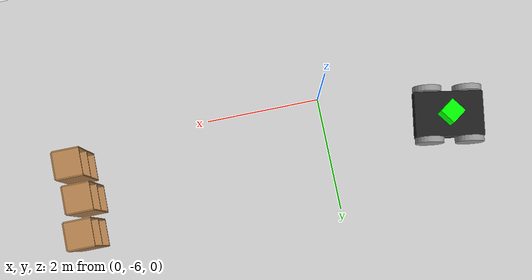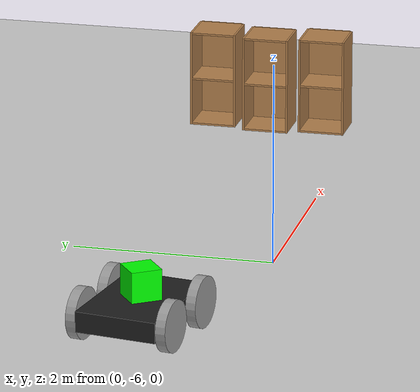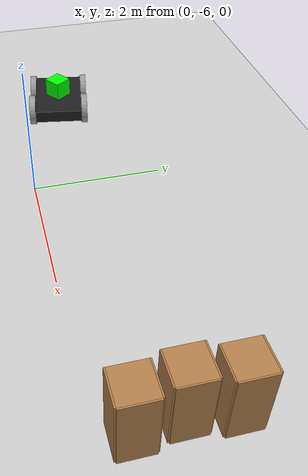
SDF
<sdf version="1.6">
 <world name="default">
  <model name="ground_plane">
   <static>1</static>
   <link name="link">
    <collision name="collision">
     <geometry><plane><normal>0 0 1</normal><size>100 100</size></plane></geometry>
     <surface>
      <contact><collide_bitmask>65535</collide_bitmask></contact>
      <friction><ode><mu>100</mu><mu2>50</mu2></ode></friction>
     </surface>
    </collision>
    <visual name="visual">
     <cast_shadows>0</cast_shadows>
     <geometry><plane><normal>0 0 1</normal><size>100 100</size></plane></geometry>
     <material>
      <script><uri>file://media/materials/scripts/gazebo.material</uri><name>Gazebo/Grey</name></script>
     </material>
    </visual>
   </link>
  </model>
  <model name="4WheeledRobot">
   <link name="link_0">
    <pose>-0 -0 -0.041667 0 -0 0</pose>
    <inertial>
     <mass>1</mass>
     <inertia>
      <ixx>0.166667</ixx>
      <ixy>0</ixy>
      <ixz>0</ixz>
      <iyy>0.166667</iyy>
      <iyz>0</iyz>
      <izz>0.166667</izz>
     </inertia>
    </inertial>
    <visual name="visual">
     <geometry><box><size>1.2 0.8 0.2</size></box></geometry>
     <material>
      <lighting>1</lighting>
      <script><uri>file://media/materials/scripts/gazebo.material</uri><name>Gazebo/Black</name></script>
      <shader type="pixel"><normal_map>__default__</normal_map></shader>
      <ambient>1 0.1 0.1 1</ambient>
      <diffuse>0.7 0.7 0.7 1</diffuse>
      <specular>0.01 0.01 0.01 1</specular>
      <emissive>0 0 0 1</emissive>
     </material>
    </visual>
    <collision name="collision">
     <geometry><box><size>1.2 0.8 0.2</size></box></geometry>
     <surface>
      <friction>
       <ode><mu>1</mu><mu2>1</mu2><fdir1>0 0 0</fdir1><slip1>0</slip1><slip2>0</slip2></ode>
       <torsional>
        <coefficient>1</coefficient>
        <patch_radius>0</patch_radius>
        <surface_radius>0</surface_radius>
        <use_patch_radius>1</use_patch_radius>
        <ode><slip>0</slip></ode>
       </torsional>
      </friction>
      <bounce><restitution_coefficient>0</restitution_coefficient><threshold>1e+06</threshold></bounce>
      <contact>
       <collide_without_contact>0</collide_without_contact>
       <collide_without_contact_bitmask>1</collide_without_contact_bitmask>
       <collide_bitmask>1</collide_bitmask>
       <ode>
        <soft_cfm>0</soft_cfm>
        <soft_erp>0.2</soft_erp>
        <kp>1e+13</kp>
        <kd>1</kd>
        <max_vel>0.01</max_vel>
        <min_depth>0</min_depth>
       </ode>
       <bullet>
        <split_impulse>1</split_impulse>
        <split_impulse_penetration_threshold>-0.01</split_impulse_penetration_threshold>
        <soft_cfm>0</soft_cfm>
        <soft_erp>0.2</soft_erp>
        <kp>1e+13</kp>
        <kd>1</kd>
       </bullet>
      </contact>
     </surface>
    </collision>
   </link>
   <link name="link_1_clone_0">
    <pose>-0.35 0.450001 -0.041667 1.5708 -0 0</pose>
    <inertial>
     <mass>1</mass>
     <inertia><ixx>0.145833</ixx><ixy>0</ixy><ixz>0</ixz><iyy>0.145833</iyy><iyz>0</iyz><izz>0.125</izz></inertia>
    </inertial>
    <visual name="visual">
     <geometry><cylinder><radius>0.25</radius><length>0.1</length></cylinder></geometry>
     <material>
      <lighting>1</lighting>
      <script><uri>file://media/materials/scripts/gazebo.material</uri><name>Gazebo/Grey</name></script>
      <shader type="pixel"><normal_map>__default__</normal_map></shader>
      <ambient>1 1 1 0</ambient>
      <diffuse>0.7 0.7 0.7 1</diffuse>
      <specular>0.01 0.01 0.01 1</specular>
      <emissive>0 0 0 1</emissive>
     </material>
    </visual>
    <collision name="collision">
     <geometry><cylinder><radius>0.25</radius><length>0.1</length></cylinder></geometry>
     <surface>
      <friction>
       <ode><mu>1</mu><mu2>1</mu2><fdir1>0 0 0</fdir1><slip1>0</slip1><slip2>0</slip2></ode>
       <torsional>
        <coefficient>1</coefficient>
        <patch_radius>0</patch_radius>
        <surface_radius>0</surface_radius>
        <use_patch_radius>1</use_patch_radius>
        <ode><slip>0</slip></ode>
       </torsional>
      </friction>
      <bounce><restitution_coefficient>0</restitution_coefficient><threshold>1e+06</threshold></bounce>
      <contact>
       <collide_without_contact>0</collide_without_contact>
       <collide_without_contact_bitmask>1</collide_without_contact_bitmask>
       <collide_bitmask>1</collide_bitmask>
       <ode>
        <soft_cfm>0</soft_cfm>
        <soft_erp>0.2</soft_erp>
        <kp>1e+13</kp>
        <kd>1</kd>
        <max_vel>0.01</max_vel>
        <min_depth>0</min_depth>
       </ode>
       <bullet>
        <split_impulse>1</split_impulse>
        <split_impulse_penetration_threshold>-0.01</split_impulse_penetration_threshold>
        <soft_cfm>0</soft_cfm>
        <soft_erp>0.2</soft_erp>
        <kp>1e+13</kp>
        <kd>1</kd>
       </bullet>
      </contact>
     </surface>
    </collision>
   </link>
   <link name="link_1_clone_0_clone">
    <pose>-0.35 -0.450001 -0.041667 1.5708 -0 0</pose>
    <inertial>
     <mass>1</mass>
     <inertia><ixx>0.145833</ixx><ixy>0</ixy><ixz>0</ixz><iyy>0.145833</iyy><iyz>0</iyz><izz>0.125</izz></inertia>
    </inertial>
    <visual name="visual">
     <geometry><cylinder><radius>0.25</radius><length>0.1</length></cylinder></geometry>
     <material>
      <lighting>1</lighting>
      <script><uri>file://media/materials/scripts/gazebo.material</uri><name>Gazebo/Grey</name></script>
      <shader type="pixel"><normal_map>__default__</normal_map></shader>
      <ambient>1 1 1 0</ambient>
      <diffuse>0.7 0.7 0.7 1</diffuse>
      <specular>0.01 0.01 0.01 1</specular>
      <emissive>0 0 0 1</emissive>
     </material>
    </visual>
    <collision name="collision">
     <geometry><cylinder><radius>0.25</radius><length>0.1</length></cylinder></geometry>
     <surface>
      <friction>
       <ode><mu>1</mu><mu2>1</mu2><fdir1>0 0 0</fdir1><slip1>0</slip1><slip2>0</slip2></ode>
       <torsional>
        <coefficient>1</coefficient>
        <patch_radius>0</patch_radius>
        <surface_radius>0</surface_radius>
        <use_patch_radius>1</use_patch_radius>
        <ode><slip>0</slip></ode>
       </torsional>
      </friction>
      <bounce><restitution_coefficient>0</restitution_coefficient><threshold>1e+06</threshold></bounce>
      <contact>
       <collide_without_contact>0</collide_without_contact>
       <collide_without_contact_bitmask>1</collide_without_contact_bitmask>
       <collide_bitmask>1</collide_bitmask>
       <ode>
        <soft_cfm>0</soft_cfm>
        <soft_erp>0.2</soft_erp>
        <kp>1e+13</kp>
        <kd>1</kd>
        <max_vel>0.01</max_vel>
        <min_depth>0</min_depth>
       </ode>
       <bullet>
        <split_impulse>1</split_impulse>
        <split_impulse_penetration_threshold>-0.01</split_impulse_penetration_threshold>
        <soft_cfm>0</soft_cfm>
        <soft_erp>0.2</soft_erp>
        <kp>1e+13</kp>
        <kd>1</kd>
       </bullet>
      </contact>
     </surface>
    </collision>
   </link>
   <link name="link_1_clone_0_clone_0">
    <pose>0.35 -0.450001 -0.041667 1.5708 -0 0</pose>
    <inertial>
     <mass>1</mass>
     <inertia><ixx>0.145833</ixx><ixy>0</ixy><ixz>0</ixz><iyy>0.145833</iyy><iyz>0</iyz><izz>0.125</izz></inertia>
    </inertial>
    <visual name="visual">
     <geometry><cylinder><radius>0.25</radius><length>0.1</length></cylinder></geometry>
     <material>
      <lighting>1</lighting>
      <script><uri>file://media/materials/scripts/gazebo.material</uri><name>Gazebo/Grey</name></script>
      <shader type="pixel"><normal_map>__default__</normal_map></shader>
      <ambient>1 1 1 0</ambient>
      <diffuse>0.7 0.7 0.7 1</diffuse>
      <specular>0.01 0.01 0.01 1</specular>
      <emissive>0 0 0 1</emissive>
     </material>
    </visual>
    <collision name="collision">
     <geometry><cylinder><radius>0.25</radius><length>0.1</length></cylinder></geometry>
     <surface>
      <friction>
       <ode><mu>1</mu><mu2>1</mu2><fdir1>0 0 0</fdir1><slip1>0</slip1><slip2>0</slip2></ode>
       <torsional>
        <coefficient>1</coefficient>
        <patch_radius>0</patch_radius>
        <surface_radius>0</surface_radius>
        <use_patch_radius>1</use_patch_radius>
        <ode><slip>0</slip></ode>
       </torsional>
      </friction>
      <bounce><restitution_coefficient>0</restitution_coefficient><threshold>1e+06</threshold></bounce>
      <contact>
       <collide_without_contact>0</collide_without_contact>
       <collide_without_contact_bitmask>1</collide_without_contact_bitmask>
       <collide_bitmask>1</collide_bitmask>
       <ode>
        <soft_cfm>0</soft_cfm>
        <soft_erp>0.2</soft_erp>
        <kp>1e+13</kp>
        <kd>1</kd>
        <max_vel>0.01</max_vel>
        <min_depth>0</min_depth>
       </ode>
       <bullet>
        <split_impulse>1</split_impulse>
        <split_impulse_penetration_threshold>-0.01</split_impulse_penetration_threshold>
        <soft_cfm>0</soft_cfm>
        <soft_erp>0.2</soft_erp>
        <kp>1e+13</kp>
        <kd>1</kd>
       </bullet>
      </contact>
     </surface>
    </collision>
   </link>
   <link name="link_1_clone_1">
    <pose>0.35 0.450001 -0.041667 1.5708 -0 0</pose>
    <inertial>
     <mass>1</mass>
     <inertia><ixx>0.145833</ixx><ixy>0</ixy><ixz>0</ixz><iyy>0.145833</iyy><iyz>0</iyz><izz>0.125</izz></inertia>
    </inertial>
    <visual name="visual">
     <geometry><cylinder><radius>0.25</radius><length>0.1</length></cylinder></geometry>
     <material>
      <lighting>1</lighting>
      <script><uri>file://media/materials/scripts/gazebo.material</uri><name>Gazebo/Grey</name></script>
      <shader type="pixel"><normal_map>__default__</normal_map></shader>
      <ambient>1 1 1 0</ambient>
      <diffuse>0.7 0.7 0.7 1</diffuse>
      <specular>0.01 0.01 0.01 1</specular>
      <emissive>0 0 0 1</emissive>
     </material>
    </visual>
    <collision name="collision">
     <geometry><cylinder><radius>0.25</radius><length>0.1</length></cylinder></geometry>
     <surface>
      <friction>
       <ode><mu>1</mu><mu2>1</mu2><fdir1>0 0 0</fdir1><slip1>0</slip1><slip2>0</slip2></ode>
       <torsional>
        <coefficient>1</coefficient>
        <patch_radius>0</patch_radius>
        <surface_radius>0</surface_radius>
        <use_patch_radius>1</use_patch_radius>
        <ode><slip>0</slip></ode>
       </torsional>
      </friction>
      <bounce><restitution_coefficient>0</restitution_coefficient><threshold>1e+06</threshold></bounce>
      <contact>
       <collide_without_contact>0</collide_without_contact>
       <collide_without_contact_bitmask>1</collide_without_contact_bitmask>
       <collide_bitmask>1</collide_bitmask>
       <ode>
        <soft_cfm>0</soft_cfm>
        <soft_erp>0.2</soft_erp>
        <kp>1e+13</kp>
        <kd>1</kd>
        <max_vel>0.01</max_vel>
        <min_depth>0</min_depth>
       </ode>
       <bullet>
        <split_impulse>1</split_impulse>
        <split_impulse_penetration_threshold>-0.01</split_impulse_penetration_threshold>
        <soft_cfm>0</soft_cfm>
        <soft_erp>0.2</soft_erp>
        <kp>1e+13</kp>
        <kd>1</kd>
       </bullet>
      </contact>
     </surface>
    </collision>
   </link>
   <link name="link_2">
    <pose>-0 -0 0.208333 0 -0 0.7854</pose>
    <inertial>
     <mass>1</mass>
     <inertia>
      <ixx>0.166667</ixx>
      <ixy>0</ixy>
      <ixz>0</ixz>
      <iyy>0.166667</iyy>
      <iyz>0</iyz>
      <izz>0.166667</izz>
     </inertia>
    </inertial>
    <visual name="visual">
     <geometry><box><size>0.3 0.3 0.3</size></box></geometry>
     <material>
      <lighting>1</lighting>
      <script><uri>file://media/materials/scripts/gazebo.material</uri><name>Gazebo/Grey</name></script>
      <shader type="pixel"><normal_map>__default__</normal_map></shader>
      <ambient>0 1 0 1</ambient>
      <diffuse>0.7 0.7 0.7 1</diffuse>
      <specular>0.01 0.01 0.01 1</specular>
      <emissive>0 0 0 1</emissive>
     </material>
    </visual>
    <collision name="collision">
     <geometry><box><size>0.3 0.3 0.3</size></box></geometry>
     <surface>
      <friction>
       <ode><mu>1</mu><mu2>1</mu2><fdir1>0 0 0</fdir1><slip1>0</slip1><slip2>0</slip2></ode>
       <torsional>
        <coefficient>1</coefficient>
        <patch_radius>0</patch_radius>
        <surface_radius>0</surface_radius>
        <use_patch_radius>1</use_patch_radius>
        <ode><slip>0</slip></ode>
       </torsional>
      </friction>
      <bounce><restitution_coefficient>0</restitution_coefficient><threshold>1e+06</threshold></bounce>
      <contact>
       <collide_without_contact>0</collide_without_contact>
       <collide_without_contact_bitmask>1</collide_without_contact_bitmask>
       <collide_bitmask>1</collide_bitmask>
       <ode>
        <soft_cfm>0</soft_cfm>
        <soft_erp>0.2</soft_erp>
        <kp>1e+13</kp>
        <kd>1</kd>
        <max_vel>0.01</max_vel>
        <min_depth>0</min_depth>
       </ode>
       <bullet>
        <split_impulse>1</split_impulse>
        <split_impulse_penetration_threshold>-0.01</split_impulse_penetration_threshold>
        <soft_cfm>0</soft_cfm>
        <soft_erp>0.2</soft_erp>
        <kp>1e+13</kp>
        <kd>1</kd>
       </bullet>
      </contact>
     </surface>
    </collision>
   </link>
   <joint name="link_0_JOINT_3" type="revolute">
    <parent>link_0</parent>
    <child>link_1_clone_0_clone_0</child>
    <axis>
     <xyz>0 0 1</xyz>
     <use_parent_model_frame>0</use_parent_model_frame>
     <limit>
      <lower>-1.79769e+308</lower>
      <upper>1.79769e+308</upper>
      <effort>-1</effort>
      <velocity>-1</velocity>
     </limit>
     <dynamics>
      <spring_reference>0</spring_reference>
      <spring_stiffness>0</spring_stiffness>
      <damping>0</damping>
     </dynamics>
    </axis>
    <physics>
     <ode><limit><cfm>0</cfm><erp>0.2</erp></limit><suspension><cfm>0</cfm><erp>0.2</erp></suspension></ode>
    </physics>
   </joint>
   <joint name="link_0_JOINT_4" type="revolute">
    <parent>link_0</parent>
    <child>link_1_clone_0_clone</child>
    <axis>
     <xyz>0 0 1</xyz>
     <use_parent_model_frame>0</use_parent_model_frame>
     <limit>
      <lower>-1.79769e+308</lower>
      <upper>1.79769e+308</upper>
      <effort>-1</effort>
      <velocity>-1</velocity>
     </limit>
     <dynamics>
      <spring_reference>0</spring_reference>
      <spring_stiffness>0</spring_stiffness>
      <damping>0</damping>
     </dynamics>
    </axis>
    <physics>
     <ode><limit><cfm>0</cfm><erp>0.2</erp></limit><suspension><cfm>0</cfm><erp>0.2</erp></suspension></ode>
    </physics>
   </joint>
   <joint name="link_0_JOINT_5" type="revolute">
    <parent>link_0</parent>
    <child>link_1_clone_0</child>
    <axis>
     <xyz>0 0 1</xyz>
     <use_parent_model_frame>0</use_parent_model_frame>
     <limit>
      <lower>-1.79769e+308</lower>
      <upper>1.79769e+308</upper>
      <effort>-1</effort>
      <velocity>-1</velocity>
     </limit>
     <dynamics>
      <spring_reference>0</spring_reference>
      <spring_stiffness>0</spring_stiffness>
      <damping>0</damping>
     </dynamics>
    </axis>
    <physics>
     <ode><limit><cfm>0</cfm><erp>0.2</erp></limit><suspension><cfm>0</cfm><erp>0.2</erp></suspension></ode>
    </physics>
   </joint>
   <joint name="link_0_JOINT_6" type="revolute">
    <parent>link_0</parent>
    <child>link_1_clone_1</child>
    <axis>
     <xyz>0 0 1</xyz>
     <use_parent_model_frame>0</use_parent_model_frame>
     <limit>
      <lower>-1.79769e+308</lower>
      <upper>1.79769e+308</upper>
      <effort>-1</effort>
      <velocity>-1</velocity>
     </limit>
     <dynamics>
      <spring_reference>0</spring_reference>
      <spring_stiffness>0</spring_stiffness>
      <damping>0</damping>
     </dynamics>
    </axis>
    <physics>
     <ode><limit><cfm>0</cfm><erp>0.2</erp></limit><suspension><cfm>0</cfm><erp>0.2</erp></suspension></ode>
    </physics>
   </joint>
   <joint name="link_0_JOINT_7" type="fixed">
    <parent>link_0</parent>
    <child>link_2</child>
    <physics>
     <ode><limit><cfm>0</cfm><erp>0.2</erp></limit><suspension><cfm>0</cfm><erp>0.2</erp></suspension></ode>
    </physics>
   </joint>
   <static>0</static>
   <pose>-2.16795 -5.23865 0.291667 0 0 -0.166151</pose>
  </model>
  <model name="cabinet">
   <static>1</static>
   <link name="cabinet_bottom_plate">
    <inertial>
     <pose>0 0 -1 0 -0 0</pose>
     <inertia><ixx>2.05</ixx><ixy>0</ixy><ixz>0</ixz><iyy>2.05</iyy><iyz>0</iyz><izz>2.05</izz></inertia>
     <mass>25</mass>
    </inertial>
    <collision name="cabinet_bottom_plate_geom">
     <pose>0 0 0.01 0 -0 0</pose>
     <geometry><box><size>0.45 0.45 0.02</size></box></geometry>
    </collision>
    <visual name="cabinet_bottom_plate_geom_visual">
     <pose>0 0 0.01 0 -0 0</pose>
     <geometry><box><size>0.45 0.45 0.02</size></box></geometry>
     <material>
      <script><uri>file://media/materials/scripts/gazebo.material</uri><name>Gazebo/Wood</name></script>
     </material>
    </visual>
    <collision name="cabinet_bottom_plate_geom_cabinet_back_plate">
     <pose>0.235 0 0.51 0 -0 0</pose>
     <geometry><box><size>0.02 0.45 1.02</size></box></geometry>
    </collision>
    <visual name="cabinet_bottom_plate_geom_cabinet_back_plate_visual">
     <pose>0.235 0 0.51 0 -0 0</pose>
     <geometry><box><size>0.02 0.45 1.02</size></box></geometry>
     <material>
      <script><uri>file://media/materials/scripts/gazebo.material</uri><name>Gazebo/Wood</name></script>
     </material>
    </visual>
    <collision name="cabinet_bottom_plate_geom_cabinet_left_plate">
     <pose>0 0.235 0.51 0 -0 0</pose>
     <geometry><box><size>0.45 0.02 1.02</size></box></geometry>
    </collision>
    <visual name="cabinet_bottom_plate_geom_cabinet_left_plate_visual">
     <pose>0 0.235 0.51 0 -0 0</pose>
     <geometry><box><size>0.45 0.02 1.02</size></box></geometry>
     <material>
      <script><uri>file://media/materials/scripts/gazebo.material</uri><name>Gazebo/Wood</name></script>
     </material>
    </visual>
    <collision name="cabinet_bottom_plate_geom_cabinet_middle_plate">
     <pose>0 0 0.51 0 -0 0</pose>
     <geometry><box><size>0.45 0.45 0.02</size></box></geometry>
    </collision>
    <visual name="cabinet_bottom_plate_geom_cabinet_middle_plate_visual">
     <pose>0 0 0.51 0 -0 0</pose>
     <geometry><box><size>0.45 0.45 0.02</size></box></geometry>
     <material>
      <script><uri>file://media/materials/scripts/gazebo.material</uri><name>Gazebo/Wood</name></script>
     </material>
    </visual>
    <collision name="cabinet_bottom_plate_geom_cabinet_right_plate">
     <pose>0 -0.235 0.51 0 -0 0</pose>
     <geometry><box><size>0.45 0.02 1.02</size></box></geometry>
    </collision>
    <visual name="cabinet_bottom_plate_geom_cabinet_right_plate_visual">
     <pose>0 -0.235 0.51 0 -0 0</pose>
     <geometry><box><size>0.45 0.02 1.02</size></box></geometry>
     <material>
      <script><uri>file://media/materials/scripts/gazebo.material</uri><name>Gazebo/Wood</name></script>
     </material>
    </visual>
    <collision name="cabinet_bottom_plate_geom_cabinet_top_plate">
     <pose>0 0 1.01 0 -0 0</pose>
     <geometry><box><size>0.45 0.45 0.02</size></box></geometry>
    </collision>
    <visual name="cabinet_bottom_plate_geom_cabinet_top_plate_visual">
     <pose>0 0 1.01 0 -0 0</pose>
     <geometry><box><size>0.45 0.45 0.02</size></box></geometry>
     <material>
      <script><uri>file://media/materials/scripts/gazebo.material</uri><name>Gazebo/Wood</name></script>
     </material>
    </visual>
   </link>
   <pose>4.32812 -5.59314 0 0 -0 0</pose>
  </model>
  <model name="cabinet_0">
   <static>1</static>
   <link name="cabinet_bottom_plate">
    <inertial>
     <pose>0 0 -1 0 -0 0</pose>
     <inertia><ixx>2.05</ixx><ixy>0</ixy><ixz>0</ixz><iyy>2.05</iyy><iyz>0</iyz><izz>2.05</izz></inertia>
     <mass>25</mass>
    </inertial>
    <collision name="cabinet_bottom_plate_geom">
     <pose>0 0 0.01 0 -0 0</pose>
     <geometry><box><size>0.45 0.45 0.02</size></box></geometry>
    </collision>
    <visual name="cabinet_bottom_plate_geom_visual">
     <pose>0 0 0.01 0 -0 0</pose>
     <geometry><box><size>0.45 0.45 0.02</size></box></geometry>
     <material>
      <script><uri>file://media/materials/scripts/gazebo.material</uri><name>Gazebo/Wood</name></script>
     </material>
    </visual>
    <collision name="cabinet_bottom_plate_geom_cabinet_back_plate">
     <pose>0.235 0 0.51 0 -0 0</pose>
     <geometry><box><size>0.02 0.45 1.02</size></box></geometry>
    </collision>
    <visual name="cabinet_bottom_plate_geom_cabinet_back_plate_visual">
     <pose>0.235 0 0.51 0 -0 0</pose>
     <geometry><box><size>0.02 0.45 1.02</size></box></geometry>
     <material>
      <script><uri>file://media/materials/scripts/gazebo.material</uri><name>Gazebo/Wood</name></script>
     </material>
    </visual>
    <collision name="cabinet_bottom_plate_geom_cabinet_left_plate">
     <pose>0 0.235 0.51 0 -0 0</pose>
     <geometry><box><size>0.45 0.02 1.02</size></box></geometry>
    </collision>
    <visual name="cabinet_bottom_plate_geom_cabinet_left_plate_visual">
     <pose>0 0.235 0.51 0 -0 0</pose>
     <geometry><box><size>0.45 0.02 1.02</size></box></geometry>
     <material>
      <script><uri>file://media/materials/scripts/gazebo.material</uri><name>Gazebo/Wood</name></script>
     </material>
    </visual>
    <collision name="cabinet_bottom_plate_geom_cabinet_middle_plate">
     <pose>0 0 0.51 0 -0 0</pose>
     <geometry><box><size>0.45 0.45 0.02</size></box></geometry>
    </collision>
    <visual name="cabinet_bottom_plate_geom_cabinet_middle_plate_visual">
     <pose>0 0 0.51 0 -0 0</pose>
     <geometry><box><size>0.45 0.45 0.02</size></box></geometry>
     <material>
      <script><uri>file://media/materials/scripts/gazebo.material</uri><name>Gazebo/Wood</name></script>
     </material>
    </visual>
    <collision name="cabinet_bottom_plate_geom_cabinet_right_plate">
     <pose>0 -0.235 0.51 0 -0 0</pose>
     <geometry><box><size>0.45 0.02 1.02</size></box></geometry>
    </collision>
    <visual name="cabinet_bottom_plate_geom_cabinet_right_plate_visual">
     <pose>0 -0.235 0.51 0 -0 0</pose>
     <geometry><box><size>0.45 0.02 1.02</size></box></geometry>
     <material>
      <script><uri>file://media/materials/scripts/gazebo.material</uri><name>Gazebo/Wood</name></script>
     </material>
    </visual>
    <collision name="cabinet_bottom_plate_geom_cabinet_top_plate">
     <pose>0 0 1.01 0 -0 0</pose>
     <geometry><box><size>0.45 0.45 0.02</size></box></geometry>
    </collision>
    <visual name="cabinet_bottom_plate_geom_cabinet_top_plate_visual">
     <pose>0 0 1.01 0 -0 0</pose>
     <geometry><box><size>0.45 0.45 0.02</size></box></geometry>
     <material>
      <script><uri>file://media/materials/scripts/gazebo.material</uri><name>Gazebo/Wood</name></script>
     </material>
    </visual>
   </link>
   <pose>4.25631 -5.00246 0 0 -0 0</pose>
  </model>
  <model name="cabinet_1">
   <static>1</static>
   <link name="cabinet_bottom_plate">
    <inertial>
     <pose>0 0 -1 0 -0 0</pose>
     <inertia><ixx>2.05</ixx><ixy>0</ixy><ixz>0</ixz><iyy>2.05</iyy><iyz>0</iyz><izz>2.05</izz></inertia>
     <mass>25</mass>
    </inertial>
    <collision name="cabinet_bottom_plate_geom">
     <pose>0 0 0.01 0 -0 0</pose>
     <geometry><box><size>0.45 0.45 0.02</size></box></geometry>
    </collision>
    <visual name="cabinet_bottom_plate_geom_visual">
     <pose>0 0 0.01 0 -0 0</pose>
     <geometry><box><size>0.45 0.45 0.02</size></box></geometry>
     <material>
      <script><uri>file://media/materials/scripts/gazebo.material</uri><name>Gazebo/Wood</name></script>
     </material>
    </visual>
    <collision name="cabinet_bottom_plate_geom_cabinet_back_plate">
     <pose>0.235 0 0.51 0 -0 0</pose>
     <geometry><box><size>0.02 0.45 1.02</size></box></geometry>
    </collision>
    <visual name="cabinet_bottom_plate_geom_cabinet_back_plate_visual">
     <pose>0.235 0 0.51 0 -0 0</pose>
     <geometry><box><size>0.02 0.45 1.02</size></box></geometry>
     <material>
      <script><uri>file://media/materials/scripts/gazebo.material</uri><name>Gazebo/Wood</name></script>
     </material>
    </visual>
    <collision name="cabinet_bottom_plate_geom_cabinet_left_plate">
     <pose>0 0.235 0.51 0 -0 0</pose>
     <geometry><box><size>0.45 0.02 1.02</size></box></geometry>
    </collision>
    <visual name="cabinet_bottom_plate_geom_cabinet_left_plate_visual">
     <pose>0 0.235 0.51 0 -0 0</pose>
     <geometry><box><size>0.45 0.02 1.02</size></box></geometry>
     <material>
      <script><uri>file://media/materials/scripts/gazebo.material</uri><name>Gazebo/Wood</name></script>
     </material>
    </visual>
    <collision name="cabinet_bottom_plate_geom_cabinet_middle_plate">
     <pose>0 0 0.51 0 -0 0</pose>
     <geometry><box><size>0.45 0.45 0.02</size></box></geometry>
    </collision>
    <visual name="cabinet_bottom_plate_geom_cabinet_middle_plate_visual">
     <pose>0 0 0.51 0 -0 0</pose>
     <geometry><box><size>0.45 0.45 0.02</size></box></geometry>
     <material>
      <script><uri>file://media/materials/scripts/gazebo.material</uri><name>Gazebo/Wood</name></script>
     </material>
    </visual>
    <collision name="cabinet_bottom_plate_geom_cabinet_right_plate">
     <pose>0 -0.235 0.51 0 -0 0</pose>
     <geometry><box><size>0.45 0.02 1.02</size></box></geometry>
    </collision>
    <visual name="cabinet_bottom_plate_geom_cabinet_right_plate_visual">
     <pose>0 -0.235 0.51 0 -0 0</pose>
     <geometry><box><size>0.45 0.02 1.02</size></box></geometry>
     <material>
      <script><uri>file://media/materials/scripts/gazebo.material</uri><name>Gazebo/Wood</name></script>
     </material>
    </visual>
    <collision name="cabinet_bottom_plate_geom_cabinet_top_plate">
     <pose>0 0 1.01 0 -0 0</pose>
     <geometry><box><size>0.45 0.45 0.02</size></box></geometry>
    </collision>
    <visual name="cabinet_bottom_plate_geom_cabinet_top_plate_visual">
     <pose>0 0 1.01 0 -0 0</pose>
     <geometry><box><size>0.45 0.45 0.02</size></box></geometry>
     <material>
      <script><uri>file://media/materials/scripts/gazebo.material</uri><name>Gazebo/Wood</name></script>
     </material>
    </visual>
   </link>
   <pose>4.33213 -4.41527 0 0 -0 0</pose>
  </model>
 </world>
</sdf>
